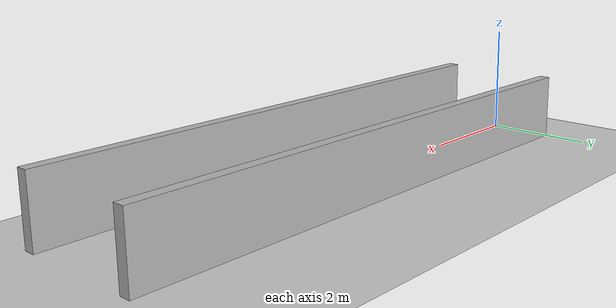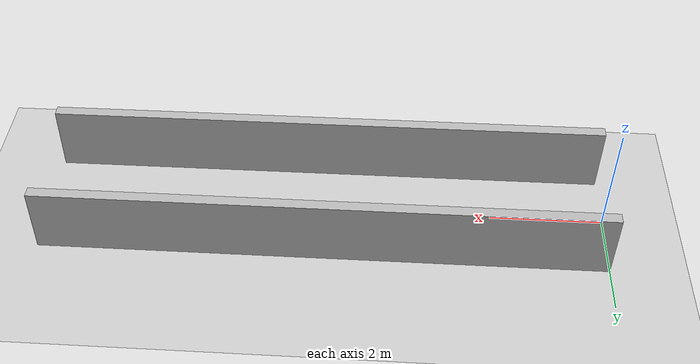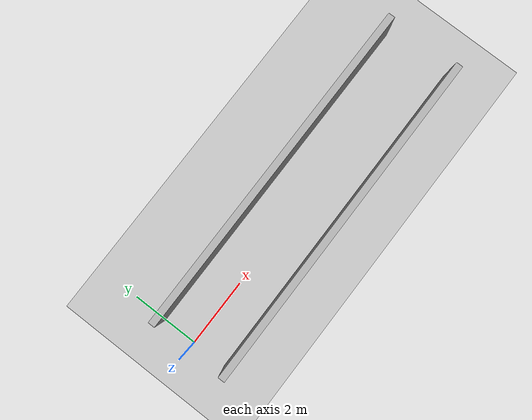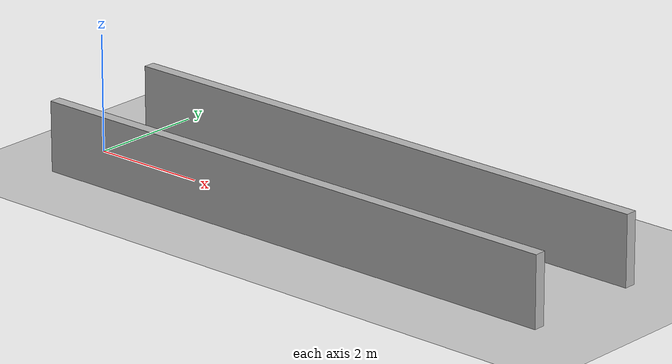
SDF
<?xml version="1.0"?>
<sdf version="1.6">
  <world name="v2-04g-r2-corridor-s4960">
    <gravity>0 0 -9.81</gravity>
    <physics name="v2_deterministic" type="ode">
      <max_step_size>0.002</max_step_size>
      <real_time_update_rate>500</real_time_update_rate>
    </physics>
    <include>
      <uri>model://sun</uri>
    </include>
    <include>
      <uri>model://ground_plane</uri>
    </include>
    <model name="corridor-left">
      <static>true</static>
      <pose>4.996323062 1.090473156 0.600000000 0 0 0.000733305</pose>
      <link name="link">
        <collision name="collision">
          <geometry>
            <box>
              <size>10.000000 0.200000 1.200000</size>
            </box>
          </geometry>
        </collision>
        <visual name="visual">
          <geometry>
            <box>
              <size>10.000000 0.200000 1.200000</size>
            </box>
          </geometry>
        </visual>
      </link>
    </model>
    <model name="corridor-right">
      <static>true</static>
      <pose>5.008929513 -1.095365762 0.600000000 0 0 0.002834417</pose>
      <link name="link">
        <collision name="collision">
          <geometry>
            <box>
              <size>10.000000 0.200000 1.200000</size>
            </box>
          </geometry>
        </collision>
        <visual name="visual">
          <geometry>
            <box>
              <size>10.000000 0.200000 1.200000</size>
            </box>
          </geometry>
        </visual>
      </link>
    </model>
  </world>
</sdf>
